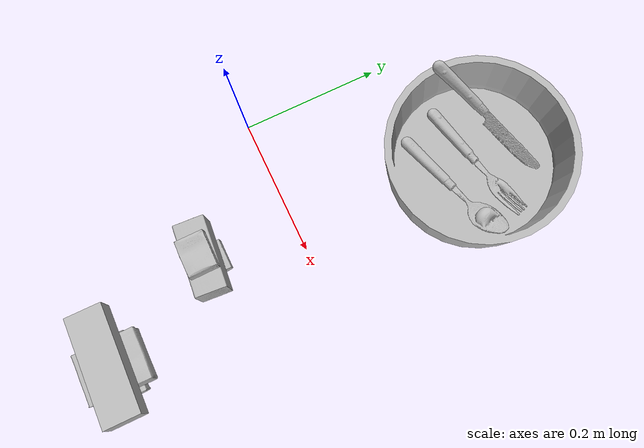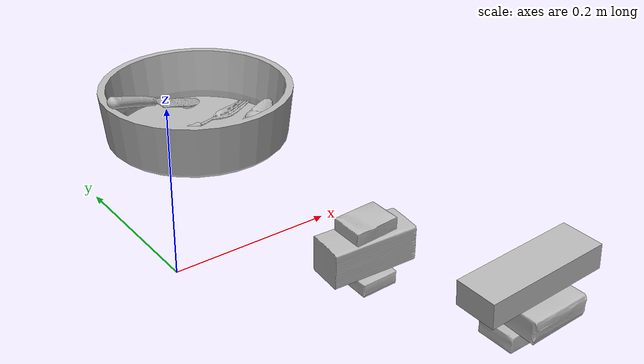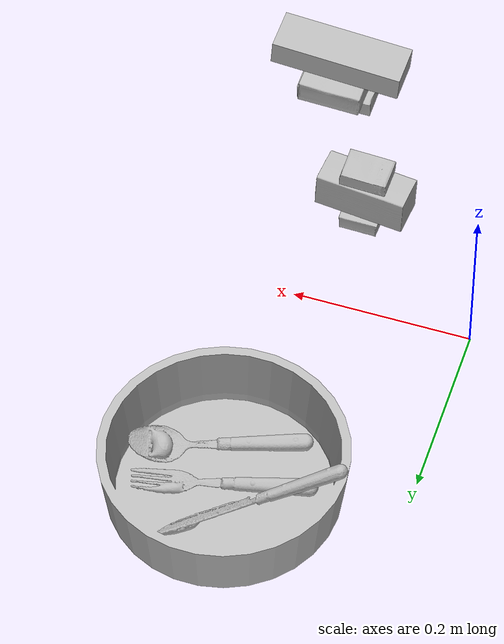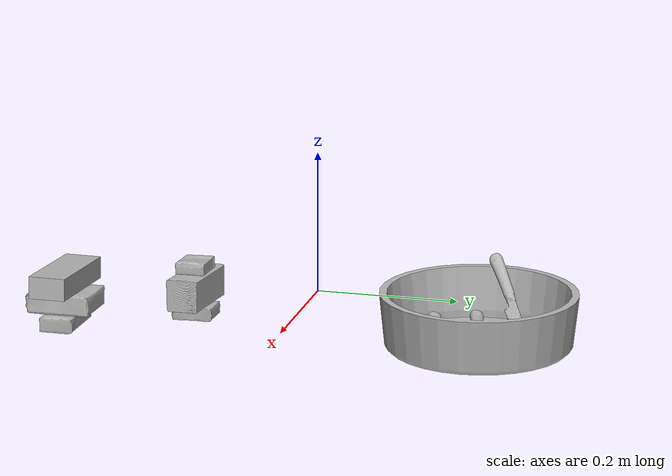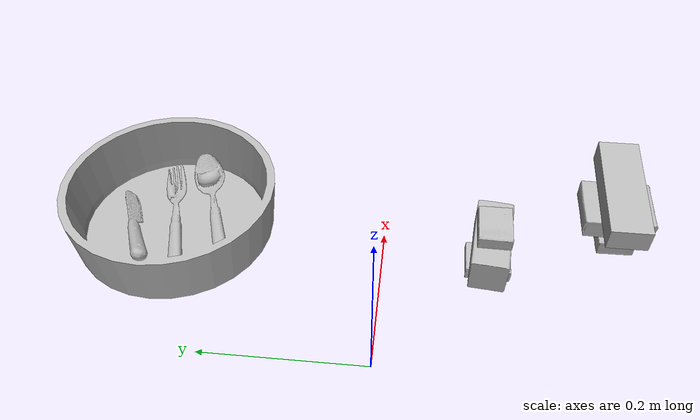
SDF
<?xml version="1.0" ?>
<sdf version="1.4">
  <world name="default">
    <light name="light1" type="point">
      <pose>0 0 1 0 0 0</pose>
      <diffuse>3 3 3 1</diffuse>
      <specular>3 3 3 1</specular>
    </light>
    <light name="light2" type="point">
      <pose>0 0.5 2 0 0 0</pose>
      <diffuse>1 1 1 1</diffuse>
      <specular>1 1 1 1</specular>
    </light>
    <light name="light3" type="point">
      <pose>0 0.5 2 0 0 0</pose>
      <diffuse>3 3 3 1</diffuse>
      <specular>3 3 3 1</specular>
    </light>
    <scene>
      <ambient>0.7 0.7 0.7</ambient>
    </scene>
    <model name="box11">
      <link name="link_box11">
        <collision name="default">
          <geometry>
            <mesh>
              <uri>model://sugar_box/collision_meshes/collision.obj</uri>
              <scale>0.5 0.5 0.5</scale>
            </mesh>
          </geometry>
          <surface>
            <friction>
              <ode>
                <mu>0.5</mu>
                <mu2>0.5</mu2>
              </ode>
            </friction>
          </surface>
        </collision>
        <visual name="default">
          <geometry>
            <mesh>
              <uri>model://sugar_box/visual_meshes/visual.dae</uri>
              <scale>0.5 0.5 0.5</scale>
            </mesh>
          </geometry>
        </visual>
        <inertial>
          <mass>0.0727815181016922</mass>
          <pose>0.0005171863595023751 1.924554817378521e-05 -0.00018182402709499002 -0.0004046263004245651 0.001050663405794887 0.002615379021776999</pose>
          <inertia>
            <ixx>1.5160335e-05</ixx>
            <iyy>4.900132e-05</iyy>
            <izz>5.8660433e-05</izz>
            <ixy>0</ixy>
            <ixz>0</ixz>
            <iyz>0</iyz>
          </inertia>
        </inertial>
      </link>
      <pose>0.239597350358963 -0.29031291604042053 0.011400938965380192 -0.00038294752244074254 -0.02302004635493895 0.004895703875398021</pose>
    </model>
    <model name="box12">
      <link name="link_box12">
        <collision name="default">
          <geometry>
            <mesh>
              <uri>model://gelatin_box/collision_meshes/collision.obj</uri>
              <scale>1.0 1.0 1.0</scale>
            </mesh>
          </geometry>
          <surface>
            <friction>
              <ode>
                <mu>0.5</mu>
                <mu2>0.5</mu2>
              </ode>
            </friction>
          </surface>
        </collision>
        <visual name="default">
          <geometry>
            <mesh>
              <uri>model://gelatin_box/visual_meshes/visual.dae</uri>
              <scale>1.0 1.0 1.0</scale>
            </mesh>
          </geometry>
        </visual>
        <inertial>
          <mass>0.2761145234107971</mass>
          <pose>0.000431961816502735 0.00011156871187267825 -0.0003640321083366871 -0.0010503719804291966 -0.004755819155973465 0.01644055947187314</pose>
          <inertia>
            <ixx>0.00019491432</ixx>
            <iyy>0.00013922628</iyy>
            <izz>0.00029670302</izz>
            <ixy>0</ixy>
            <ixz>0</ixz>
            <iyz>0</iyz>
          </inertia>
        </inertial>
      </link>
      <pose>0.23899859189987183 -0.29046371579170227 0.03751567006111145 0.00895445944295919 -0.045244058962024485 -0.009686525215517702</pose>
    </model>
    <model name="box13">
      <link name="link_box13">
        <collision name="default">
          <geometry>
            <mesh>
              <uri>model://jenga/collision_meshes/collision.obj</uri>
              <scale>1.0 1.0 1.0</scale>
            </mesh>
          </geometry>
          <surface>
            <friction>
              <ode>
                <mu>0.5</mu>
                <mu2>0.5</mu2>
              </ode>
            </friction>
          </surface>
        </collision>
        <visual name="default">
          <geometry>
            <mesh>
              <uri>model://jenga/visual_meshes/visual.dae</uri>
              <scale>1.0 1.0 1.0</scale>
            </mesh>
          </geometry>
        </visual>
        <inertial>
          <mass>0.30891793966293335</mass>
          <pose>-2.502855807051674e-07 -0.0001025000965455547 -4.0923401684267446e-05 0.0 -7.34215461761844e-07 0.0</pose>
          <inertia>
            <ixx>8.548509e-05</ixx>
            <iyy>0.00057924463</iyy>
            <izz>0.0006183929</izz>
            <ixy>0</ixy>
            <ixz>0</ixz>
            <iyz>0</iyz>
          </inertia>
        </inertial>
      </link>
      <pose>0.237474724650383 -0.29040002822875977 0.06705941259860992 -0.007060106827951778 -0.07098671786778671 -0.005637260583569977</pose>
    </model>
    <model name="box21">
      <link name="link_box21">
        <collision name="default">
          <geometry>
            <mesh>
              <uri>model://pudding_box/collision_meshes/collision.obj</uri>
              <scale>0.5 0.5 0.5</scale>
            </mesh>
          </geometry>
          <surface>
            <friction>
              <ode>
                <mu>0.5</mu>
                <mu2>0.5</mu2>
              </ode>
            </friction>
          </surface>
        </collision>
        <visual name="default">
          <geometry>
            <mesh>
              <uri>model://pudding_box/visual_meshes/visual.dae</uri>
              <scale>0.5 0.5 0.5</scale>
            </mesh>
          </geometry>
        </visual>
        <inertial>
          <mass>0.049023520201444626</mass>
          <pose>0.0002447411243338138 0.00040339428232982755 -0.0002594413817860186 0.005213100395594636 -0.006603798704538055 0.020079825164231697</pose>
          <inertia>
            <ixx>1.3854642e-05</ixx>
            <iyy>9.321502e-06</iyy>
            <izz>2.046e-05</izz>
            <ixy>0</ixy>
            <ixz>0</ixz>
            <iyz>0</iyz>
          </inertia>
        </inertial>
      </link>
      <pose>0.1597461700439453 -0.13025924563407898 0.00986306183040142 0.022790409351725507 -0.01124028012941488 0.00014830377602587628</pose>
    </model>
    <model name="box22">
      <link name="link_box22">
        <collision name="default">
          <geometry>
            <mesh>
              <uri>model://wood_block/collision_meshes/collision.obj</uri>
              <scale>0.5 0.5 0.5</scale>
            </mesh>
          </geometry>
          <surface>
            <friction>
              <ode>
                <mu>0.5</mu>
                <mu2>0.5</mu2>
              </ode>
            </friction>
          </surface>
        </collision>
        <visual name="default">
          <geometry>
            <mesh>
              <uri>model://wood_block/visual_meshes/visual.dae</uri>
              <scale>0.5 0.5 0.5</scale>
            </mesh>
          </geometry>
        </visual>
        <inertial>
          <mass>0.3074011206626892</mass>
          <pose>-2.9066577553749084e-06 -0.000285404734313488 0.00013204291462898254 -0.05220975528717129 -0.005192695583989696 -0.0068613793241849635</pose>
          <inertia>
            <ixx>0.00010283729</ixx>
            <iyy>0.00032486304</iyy>
            <izz>0.0003236479</izz>
            <ixy>0</ixy>
            <ixz>0</ixz>
            <iyz>0</iyz>
          </inertia>
        </inertial>
      </link>
      <pose>0.15915349125862122 -0.13044050335884094 0.041743334382772446 0.026057232432511544 -0.028115875927757106 -0.08317739909349589</pose>
    </model>
    <model name="box23">
      <link name="link_box23">
        <collision name="default">
          <geometry>
            <mesh>
              <uri>model://cracker_box/collision_meshes/collision.obj</uri>
              <scale>0.25 0.25 0.25</scale>
            </mesh>
          </geometry>
          <surface>
            <friction>
              <ode>
                <mu>0.5</mu>
                <mu2>0.5</mu2>
              </ode>
            </friction>
          </surface>
        </collision>
        <visual name="default">
          <geometry>
            <mesh>
              <uri>model://cracker_box/visual_meshes/visual.dae</uri>
              <scale>0.25 0.25 0.25</scale>
            </mesh>
          </geometry>
        </visual>
        <inertial>
          <mass>0.04833315312862396</mass>
          <pose>0.00023660357692278922 6.358561950037256e-05 -0.00042573834070935845 -0.0003162077466025917 -0.011106490531569568 0.002546795235651085</pose>
          <inertia>
            <ixx>7.683624e-06</ixx>
            <iyy>1.268717e-05</iyy>
            <izz>1.8105757e-05</izz>
            <ixy>0</ixy>
            <ixz>0</ixz>
            <iyz>0</iyz>
          </inertia>
        </inertial>
      </link>
      <pose>0.15803715586662292 -0.13134506344795227 0.07363195717334747 0.011217349119928945 -0.04323431897931641 -0.002084939081773678</pose>
    </model>
    <model name="plate1">
      <link name="link_plate1">
        <collision name="default">
          <geometry>
            <mesh>
              <uri>model://pan_tefal/collision_meshes/collision.obj</uri>
              <scale>1.0 1.0 1.0</scale>
            </mesh>
          </geometry>
          <surface>
            <friction>
              <ode>
                <mu>0.5</mu>
                <mu2>0.5</mu2>
              </ode>
            </friction>
          </surface>
        </collision>
        <visual name="default">
          <geometry>
            <mesh>
              <uri>model://pan_tefal/visual_meshes/visual.dae</uri>
              <scale>1.0 1.0 1.0</scale>
            </mesh>
          </geometry>
        </visual>
        <inertial>
          <mass>1.5598481893539429</mass>
          <pose>-0.0001800245518097654 3.279111842857674e-05 -0.008514934219419956 0.0008190275877392404 -0.0003301333888364595 -0.33185859522575717</pose>
          <inertia>
            <ixx>0.010767555</ixx>
            <iyy>0.010836974</iyy>
            <izz>0.019820997</izz>
            <ixy>0</ixy>
            <ixz>0</ixz>
            <iyz>0</iyz>
          </inertia>
        </inertial>
      </link>
      <pose>0.19001466035842896 0.2699863016605377 0.037998393177986145 0.00026633964502959835 0.000350043406320489 3.846498361761406e-06</pose>
    </model>
    <model name="silverware1">
      <link name="link_silverware1">
        <collision name="default">
          <geometry>
            <mesh>
              <uri>model://fork/collision_meshes/collision.obj</uri>
              <scale>1.0 1.0 1.0</scale>
            </mesh>
          </geometry>
          <surface>
            <friction>
              <ode>
                <mu>0.5</mu>
                <mu2>0.5</mu2>
              </ode>
            </friction>
          </surface>
        </collision>
        <visual name="default">
          <geometry>
            <mesh>
              <uri>model://fork/visual_meshes/visual.dae</uri>
              <scale>1.0 1.0 1.0</scale>
            </mesh>
          </geometry>
        </visual>
        <inertial>
          <mass>0.024598950520157814</mass>
          <pose>-0.029570043087005615 0.0004658824182115495 0.0003218861820641905 -0.013552328184634912 -0.010977839901754499 0.014453902526732686</pose>
          <inertia>
            <ixx>8.623325e-07</ixx>
            <iyy>6.422079e-05</iyy>
            <izz>6.460647e-05</izz>
            <ixy>0</ixy>
            <ixz>0</ixz>
            <iyz>0</iyz>
          </inertia>
        </inertial>
      </link>
      <pose>0.1900593340396881 0.2702272832393646 0.013425125740468502 -0.19384679047973938 0.02353331948158673 0.24249631062139484</pose>
    </model>
    <model name="silverware2">
      <link name="link_silverware2">
        <collision name="default">
          <geometry>
            <mesh>
              <uri>model://knife/collision_meshes/collision.obj</uri>
              <scale>1.0 1.0 1.0</scale>
            </mesh>
          </geometry>
          <surface>
            <friction>
              <ode>
                <mu>0.5</mu>
                <mu2>0.5</mu2>
              </ode>
            </friction>
          </surface>
        </collision>
        <visual name="default">
          <geometry>
            <mesh>
              <uri>model://knife/visual_meshes/visual.dae</uri>
              <scale>1.0 1.0 1.0</scale>
            </mesh>
          </geometry>
        </visual>
        <inertial>
          <mass>0.03473280370235443</mass>
          <pose>-0.02378525584936142 0.0015275126788765192 5.062021955382079e-05 0.0730594717304457 0.017248417183571667 -0.007409821049452296</pose>
          <inertia>
            <ixx>9.858578e-07</ixx>
            <iyy>0.00013343782</iyy>
            <izz>0.00013375531</izz>
            <ixy>0</ixy>
            <ixz>0</ixz>
            <iyz>0</iyz>
          </inertia>
        </inertial>
      </link>
      <pose>0.14873193204402924 0.30445876717567444 0.04761650413274765 0.4779824699896899 0.3823036010471387 0.4361168497359422</pose>
    </model>
    <model name="silverware3">
      <link name="link_silverware3">
        <collision name="default">
          <geometry>
            <mesh>
              <uri>model://spoon/collision_meshes/collision.obj</uri>
              <scale>1.0 1.0 1.0</scale>
            </mesh>
          </geometry>
          <surface>
            <friction>
              <ode>
                <mu>0.5</mu>
                <mu2>0.5</mu2>
              </ode>
            </friction>
          </surface>
        </collision>
        <visual name="default">
          <geometry>
            <mesh>
              <uri>model://spoon/visual_meshes/visual.dae</uri>
              <scale>1.0 1.0 1.0</scale>
            </mesh>
          </geometry>
        </visual>
        <inertial>
          <mass>0.02618301659822464</mass>
          <pose>-0.0055263168178498745 -0.00160341733135283 -0.0007271658978424966 0.035216710647368914 -0.039065848798616645 0.0061506127138874515</pose>
          <inertia>
            <ixx>1.4563418e-06</ixx>
            <iyy>9.96255e-05</iyy>
            <izz>0.000100343714</izz>
            <ixy>0</ixy>
            <ixz>0</ixz>
            <iyz>0</iyz>
          </inertia>
        </inertial>
      </link>
      <pose>0.20981453359127045 0.22626659274101257 0.015809103846549988 -0.2657097626307457 0.017529153086298425 0.32210768192092926</pose>
    </model>
  </world>
</sdf>
